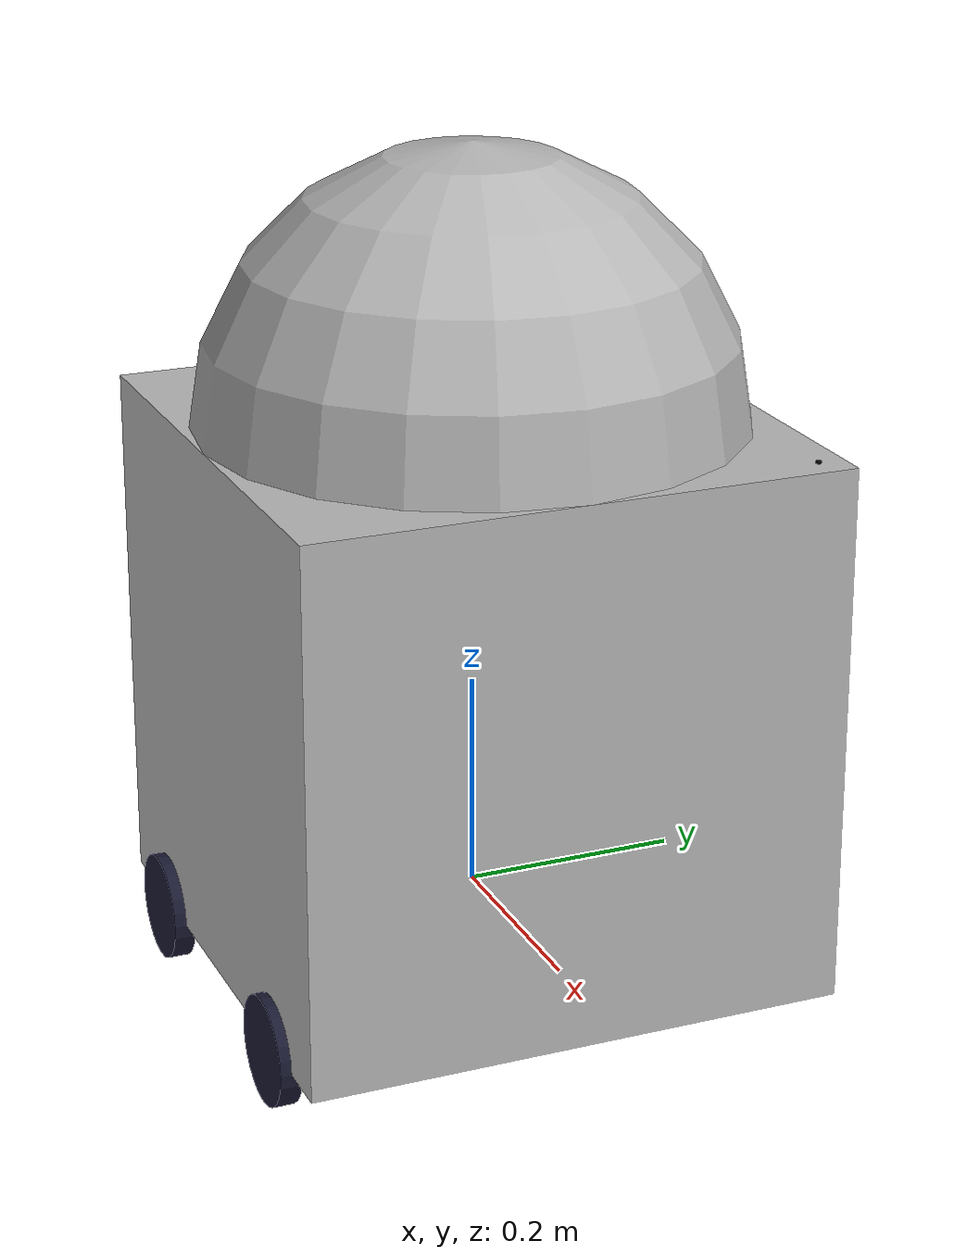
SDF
<?xml version='1.0'?>
<sdf version='1.6'>
  <model name='simplebot'>
    <model name='simplebot'>
      <link name='robot_link'>
        <pose frame=''>0 0 0.2 0 -0 0</pose>
        <self_collide>0</self_collide>
        <kinematic>0</kinematic>
        <gravity>1</gravity>
        <inertial>
          <mass>1</mass>
          <pose frame=''>0 0 0 0 -0 0</pose>
          <inertia>
            <ixx>1</ixx>
            <ixy>0</ixy>
            <ixz>0</ixz>
            <iyy>1</iyy>
            <iyz>0</iyz>
            <izz>1</izz>
          </inertia>
        </inertial>
        <visual name='power_led_visual'>
          <pose frame=''>0.225 0.225 0.25 0 -0 0</pose>
          <geometry>
            <sphere>
              <radius>0.003</radius>
            </sphere>
          </geometry>
          <material>
            <ambient>0 0 0 1</ambient>
            <diffuse>0 0 0 1</diffuse>
            <specular>0 0 0 1</specular>
            <emissive>0 1 0 1</emissive>
            <shader type='pixel'>
              <normal_map>__default__</normal_map>
            </shader>
            <script>
              <name>ModelPreview_1::robot_link::power_led_visual_MATERIAL_</name>
              <uri>__default__</uri>
            </script>
          </material>
          <transparency>0</transparency>
          <cast_shadows>1</cast_shadows>
        </visual>
        <visual name='body_visual'>
          <geometry>
            <box>
              <size>0.5 0.5 0.5</size>
            </box>
          </geometry>
          <material>
            <shader type='pixel'>
              <normal_map>__default__</normal_map>
            </shader>
            <emissive>0 0 0 1</emissive>
          </material>
          <pose frame=''>0 0 0 0 -0 0</pose>
          <cast_shadows>1</cast_shadows>
          <transparency>0</transparency>
        </visual>
        <visual name='head_visual'>
          <pose frame=''>0 0 0.25 0 0 -2.5</pose>
          <geometry>
            <sphere>
              <radius>0.25</radius>
            </sphere>
          </geometry>
          <material>
            <shader type='pixel'>
              <normal_map>__default__</normal_map>
            </shader>
            <emissive>0 0 0 1</emissive>
          </material>
          <cast_shadows>1</cast_shadows>
          <transparency>0</transparency>
        </visual>
        <collision name='body_collision'>
          <laser_retro>0</laser_retro>
          <max_contacts>10</max_contacts>
          <pose frame=''>0 0 0 0 -0 0</pose>
          <geometry>
            <box>
              <size>0.5 0.5 0.5</size>
            </box>
          </geometry>
          <surface>
            <friction>
              <ode>
                <mu>1</mu>
                <mu2>1</mu2>
                <fdir1>0 0 0</fdir1>
                <slip1>0</slip1>
                <slip2>0</slip2>
              </ode>
              <torsional>
                <coefficient>1</coefficient>
                <patch_radius>0</patch_radius>
                <surface_radius>0</surface_radius>
                <use_patch_radius>1</use_patch_radius>
                <ode>
                  <slip>0</slip>
                </ode>
              </torsional>
            </friction>
            <bounce>
              <restitution_coefficient>0</restitution_coefficient>
              <threshold>1e+06</threshold>
            </bounce>
            <contact>
              <collide_without_contact>0</collide_without_contact>
              <collide_without_contact_bitmask>1</collide_without_contact_bitmask>
              <collide_bitmask>1</collide_bitmask>
              <ode>
                <soft_cfm>0</soft_cfm>
                <soft_erp>0.2</soft_erp>
                <kp>1e+13</kp>
                <kd>1</kd>
                <max_vel>0.01</max_vel>
                <min_depth>0</min_depth>
              </ode>
              <bullet>
                <split_impulse>1</split_impulse>
                <split_impulse_penetration_threshold>-0.01</split_impulse_penetration_threshold>
                <soft_cfm>0</soft_cfm>
                <soft_erp>0.2</soft_erp>
                <kp>1e+13</kp>
                <kd>1</kd>
              </bullet>
            </contact>
          </surface>
        </collision>
      </link>
      <link name='link_1'>
        <pose frame=''>0.15 -0.25 -0.05 1.5707 -0 0</pose>
        <inertial>
          <mass>1</mass>
          <inertia>
            <ixx>0.145833</ixx>
            <ixy>0</ixy>
            <ixz>0</ixz>
            <iyy>0.145833</iyy>
            <iyz>0</iyz>
            <izz>0.125</izz>
          </inertia>
          <pose frame=''>0 0 0 0 -0 0</pose>
        </inertial>
        <gravity>1</gravity>
        <self_collide>0</self_collide>
        <kinematic>0</kinematic>
        <visual name='visual'>
          <pose frame=''>0 0 0 0 -0 0</pose>
          <geometry>
            <cylinder>
              <radius>0.05</radius>
              <length>0.02</length>
            </cylinder>
          </geometry>
          <material>
            <lighting>1</lighting>
            <script>
              <uri>file://media/materials/scripts/gazebo.material</uri>
              <name>Gazebo/Grey</name>
            </script>
            <shader type='pixel'>
              <normal_map>__default__</normal_map>
            </shader>
            <ambient>0.1 0.1 0.1 1</ambient>
            <diffuse>0.1 0.1 0.2 1</diffuse>
            <specular>0.01 0.01 0.01 1</specular>
            <emissive>0 0 0 1</emissive>
          </material>
          <transparency>0</transparency>
          <cast_shadows>1</cast_shadows>
        </visual>
        <collision name='collision'>
          <laser_retro>0</laser_retro>
          <max_contacts>10</max_contacts>
          <pose frame=''>0 0 0 0 -0 0</pose>
          <geometry>
            <cylinder>
              <radius>0.05</radius>
              <length>0.02</length>
            </cylinder>
          </geometry>
          <surface>
            <friction>
              <ode>
                <mu>1</mu>
                <mu2>1</mu2>
                <fdir1>0 0 0</fdir1>
                <slip1>0</slip1>
                <slip2>0</slip2>
              </ode>
              <torsional>
                <coefficient>1</coefficient>
                <patch_radius>0</patch_radius>
                <surface_radius>0</surface_radius>
                <use_patch_radius>1</use_patch_radius>
                <ode>
                  <slip>0</slip>
                </ode>
              </torsional>
            </friction>
            <bounce>
              <restitution_coefficient>0</restitution_coefficient>
              <threshold>1e+06</threshold>
            </bounce>
            <contact>
              <collide_without_contact>0</collide_without_contact>
              <collide_without_contact_bitmask>1</collide_without_contact_bitmask>
              <collide_bitmask>1</collide_bitmask>
              <ode>
                <soft_cfm>0</soft_cfm>
                <soft_erp>0.2</soft_erp>
                <kp>1e+13</kp>
                <kd>1</kd>
                <max_vel>0.01</max_vel>
                <min_depth>0</min_depth>
              </ode>
              <bullet>
                <split_impulse>1</split_impulse>
                <split_impulse_penetration_threshold>-0.01</split_impulse_penetration_threshold>
                <soft_cfm>0</soft_cfm>
                <soft_erp>0.2</soft_erp>
                <kp>1e+13</kp>
                <kd>1</kd>
              </bullet>
            </contact>
          </surface>
        </collision>
      </link>
      <link name='link_1_clone'>
        <pose frame=''>0.15 0.25 -0.05 1.5707 -0 0</pose>
        <inertial>
          <mass>1</mass>
          <inertia>
            <ixx>0.145833</ixx>
            <ixy>0</ixy>
            <ixz>0</ixz>
            <iyy>0.145833</iyy>
            <iyz>0</iyz>
            <izz>0.125</izz>
          </inertia>
          <pose frame=''>0 0 0 0 -0 0</pose>
        </inertial>
        <self_collide>0</self_collide>
        <kinematic>0</kinematic>
        <gravity>1</gravity>
        <visual name='visual'>
          <pose frame=''>0 0 0 0 -0 0</pose>
          <geometry>
            <cylinder>
              <radius>0.05</radius>
              <length>0.02</length>
            </cylinder>
          </geometry>
          <material>
            <lighting>1</lighting>
            <script>
              <uri>file://media/materials/scripts/gazebo.material</uri>
              <name>Gazebo/Grey</name>
            </script>
            <shader type='pixel'>
              <normal_map>__default__</normal_map>
            </shader>
            <ambient>0.1 0.1 0.1 1</ambient>
            <diffuse>0.1 0.1 0.2 1</diffuse>
            <specular>0.01 0.01 0.01 1</specular>
            <emissive>0 0 0 1</emissive>
          </material>
          <transparency>0</transparency>
          <cast_shadows>1</cast_shadows>
        </visual>
        <collision name='collision'>
          <laser_retro>0</laser_retro>
          <max_contacts>10</max_contacts>
          <pose frame=''>0 0 0 0 -0 0</pose>
          <geometry>
            <cylinder>
              <radius>0.05</radius>
              <length>0.02</length>
            </cylinder>
          </geometry>
          <surface>
            <friction>
              <ode>
                <mu>1</mu>
                <mu2>1</mu2>
                <fdir1>0 0 0</fdir1>
                <slip1>0</slip1>
                <slip2>0</slip2>
              </ode>
              <torsional>
                <coefficient>1</coefficient>
                <patch_radius>0</patch_radius>
                <surface_radius>0</surface_radius>
                <use_patch_radius>1</use_patch_radius>
                <ode>
                  <slip>0</slip>
                </ode>
              </torsional>
            </friction>
            <bounce>
              <restitution_coefficient>0</restitution_coefficient>
              <threshold>1e+06</threshold>
            </bounce>
            <contact>
              <collide_without_contact>0</collide_without_contact>
              <collide_without_contact_bitmask>1</collide_without_contact_bitmask>
              <collide_bitmask>1</collide_bitmask>
              <ode>
                <soft_cfm>0</soft_cfm>
                <soft_erp>0.2</soft_erp>
                <kp>1e+13</kp>
                <kd>1</kd>
                <max_vel>0.01</max_vel>
                <min_depth>0</min_depth>
              </ode>
              <bullet>
                <split_impulse>1</split_impulse>
                <split_impulse_penetration_threshold>-0.01</split_impulse_penetration_threshold>
                <soft_cfm>0</soft_cfm>
                <soft_erp>0.2</soft_erp>
                <kp>1e+13</kp>
                <kd>1</kd>
              </bullet>
            </contact>
          </surface>
        </collision>
      </link>
      <link name='link_1_clone_0'>
        <pose frame=''>-0.15 -0.251249 -0.05 1.5707 -0 0</pose>
        <inertial>
          <mass>1</mass>
          <inertia>
            <ixx>0.145833</ixx>
            <ixy>0</ixy>
            <ixz>0</ixz>
            <iyy>0.145833</iyy>
            <iyz>0</iyz>
            <izz>0.125</izz>
          </inertia>
          <pose frame=''>0 0 0 0 -0 0</pose>
        </inertial>
        <self_collide>0</self_collide>
        <kinematic>0</kinematic>
        <gravity>1</gravity>
        <visual name='visual'>
          <pose frame=''>0 0 0 0 -0 0</pose>
          <geometry>
            <cylinder>
              <radius>0.05</radius>
              <length>0.02</length>
            </cylinder>
          </geometry>
          <material>
            <lighting>1</lighting>
            <script>
              <uri>file://media/materials/scripts/gazebo.material</uri>
              <name>Gazebo/Grey</name>
            </script>
            <shader type='pixel'>
              <normal_map>__default__</normal_map>
            </shader>
            <ambient>0.1 0.1 0.1 1</ambient>
            <diffuse>0.1 0.1 0.2 1</diffuse>
            <specular>0.01 0.01 0.01 1</specular>
            <emissive>0 0 0 1</emissive>
          </material>
          <transparency>0</transparency>
          <cast_shadows>1</cast_shadows>
        </visual>
        <collision name='collision'>
          <laser_retro>0</laser_retro>
          <max_contacts>10</max_contacts>
          <pose frame=''>0 0 0 0 -0 0</pose>
          <geometry>
            <cylinder>
              <radius>0.05</radius>
              <length>0.02</length>
            </cylinder>
          </geometry>
          <surface>
            <friction>
              <ode>
                <mu>1</mu>
                <mu2>1</mu2>
                <fdir1>0 0 0</fdir1>
                <slip1>0</slip1>
                <slip2>0</slip2>
              </ode>
              <torsional>
                <coefficient>1</coefficient>
                <patch_radius>0</patch_radius>
                <surface_radius>0</surface_radius>
                <use_patch_radius>1</use_patch_radius>
                <ode>
                  <slip>0</slip>
                </ode>
              </torsional>
            </friction>
            <bounce>
              <restitution_coefficient>0</restitution_coefficient>
              <threshold>1e+06</threshold>
            </bounce>
            <contact>
              <collide_without_contact>0</collide_without_contact>
              <collide_without_contact_bitmask>1</collide_without_contact_bitmask>
              <collide_bitmask>1</collide_bitmask>
              <ode>
                <soft_cfm>0</soft_cfm>
                <soft_erp>0.2</soft_erp>
                <kp>1e+13</kp>
                <kd>1</kd>
                <max_vel>0.01</max_vel>
                <min_depth>0</min_depth>
              </ode>
              <bullet>
                <split_impulse>1</split_impulse>
                <split_impulse_penetration_threshold>-0.01</split_impulse_penetration_threshold>
                <soft_cfm>0</soft_cfm>
                <soft_erp>0.2</soft_erp>
                <kp>1e+13</kp>
                <kd>1</kd>
              </bullet>
            </contact>
          </surface>
        </collision>
      </link>
      <link name='link_1_clone_clone'>
        <pose frame=''>-0.15 0.25 -0.05 1.5707 -0 0</pose>
        <inertial>
          <mass>1</mass>
          <inertia>
            <ixx>0.145833</ixx>
            <ixy>0</ixy>
            <ixz>0</ixz>
            <iyy>0.145833</iyy>
            <iyz>0</iyz>
            <izz>0.125</izz>
          </inertia>
          <pose frame=''>0 0 0 0 -0 0</pose>
        </inertial>
        <self_collide>0</self_collide>
        <kinematic>0</kinematic>
        <gravity>1</gravity>
        <visual name='visual'>
          <pose frame=''>0 0 0 0 -0 0</pose>
          <geometry>
            <cylinder>
              <radius>0.05</radius>
              <length>0.02</length>
            </cylinder>
          </geometry>
          <material>
            <lighting>1</lighting>
            <script>
              <uri>file://media/materials/scripts/gazebo.material</uri>
              <name>Gazebo/Grey</name>
            </script>
            <shader type='pixel'>
              <normal_map>__default__</normal_map>
            </shader>
            <ambient>0.1 0.1 0.1 1</ambient>
            <diffuse>0.1 0.1 0.2 1</diffuse>
            <specular>0.01 0.01 0.01 1</specular>
            <emissive>0 0 0 1</emissive>
          </material>
          <transparency>0</transparency>
          <cast_shadows>1</cast_shadows>
        </visual>
        <collision name='collision'>
          <laser_retro>0</laser_retro>
          <max_contacts>10</max_contacts>
          <pose frame=''>0 0 0 0 -0 0</pose>
          <geometry>
            <cylinder>
              <radius>0.05</radius>
              <length>0.02</length>
            </cylinder>
          </geometry>
          <surface>
            <friction>
              <ode>
                <mu>1</mu>
                <mu2>1</mu2>
                <fdir1>0 0 0</fdir1>
                <slip1>0</slip1>
                <slip2>0</slip2>
              </ode>
              <torsional>
                <coefficient>1</coefficient>
                <patch_radius>0</patch_radius>
                <surface_radius>0</surface_radius>
                <use_patch_radius>1</use_patch_radius>
                <ode>
                  <slip>0</slip>
                </ode>
              </torsional>
            </friction>
            <bounce>
              <restitution_coefficient>0</restitution_coefficient>
              <threshold>1e+06</threshold>
            </bounce>
            <contact>
              <collide_without_contact>0</collide_without_contact>
              <collide_without_contact_bitmask>1</collide_without_contact_bitmask>
              <collide_bitmask>1</collide_bitmask>
              <ode>
                <soft_cfm>0</soft_cfm>
                <soft_erp>0.2</soft_erp>
                <kp>1e+13</kp>
                <kd>1</kd>
                <max_vel>0.01</max_vel>
                <min_depth>0</min_depth>
              </ode>
              <bullet>
                <split_impulse>1</split_impulse>
                <split_impulse_penetration_threshold>-0.01</split_impulse_penetration_threshold>
                <soft_cfm>0</soft_cfm>
                <soft_erp>0.2</soft_erp>
                <kp>1e+13</kp>
                <kd>1</kd>
              </bullet>
            </contact>
          </surface>
        </collision>
      </link>
      <joint name='robot_link_JOINT_0' type='revolute'>
        <parent>robot_link</parent>
        <child>link_1</child>
        <pose frame=''>0 0 0 0 -0 0</pose>
        <axis>
          <xyz>0 0 1</xyz>
          <use_parent_model_frame>0</use_parent_model_frame>
          <limit>
            <lower>-1.79769e+308</lower>
            <upper>1.79769e+308</upper>
            <effort>-1</effort>
            <velocity>-1</velocity>
          </limit>
          <dynamics>
            <spring_reference>0</spring_reference>
            <spring_stiffness>0</spring_stiffness>
            <damping>0</damping>
          </dynamics>
        </axis>
        <physics>
          <ode>
            <limit>
              <cfm>0</cfm>
              <erp>0.2</erp>
            </limit>
            <suspension>
              <cfm>0</cfm>
              <erp>0.2</erp>
            </suspension>
          </ode>
        </physics>
      </joint>
      <joint name='robot_link_JOINT_2' type='revolute'>
        <parent>robot_link</parent>
        <child>link_1_clone</child>
        <pose frame=''>0 0 0 0 -0 0</pose>
        <axis>
          <xyz>0 0 1</xyz>
          <use_parent_model_frame>0</use_parent_model_frame>
          <limit>
            <lower>-1.79769e+308</lower>
            <upper>1.79769e+308</upper>
            <effort>-1</effort>
            <velocity>-1</velocity>
          </limit>
          <dynamics>
            <spring_reference>0</spring_reference>
            <spring_stiffness>0</spring_stiffness>
            <damping>0</damping>
          </dynamics>
        </axis>
        <physics>
          <ode>
            <limit>
              <cfm>0</cfm>
              <erp>0.2</erp>
            </limit>
            <suspension>
              <cfm>0</cfm>
              <erp>0.2</erp>
            </suspension>
          </ode>
        </physics>
      </joint>
      <joint name='robot_link_JOINT_3' type='revolute'>
        <parent>robot_link</parent>
        <child>link_1_clone_clone</child>
        <pose frame=''>0 0 0 0 -0 0</pose>
        <axis>
          <xyz>0 0 1</xyz>
          <use_parent_model_frame>0</use_parent_model_frame>
          <limit>
            <lower>-1.79769e+308</lower>
            <upper>1.79769e+308</upper>
            <effort>-1</effort>
            <velocity>-1</velocity>
          </limit>
          <dynamics>
            <spring_reference>0</spring_reference>
            <spring_stiffness>0</spring_stiffness>
            <damping>0</damping>
          </dynamics>
        </axis>
        <physics>
          <ode>
            <limit>
              <cfm>0</cfm>
              <erp>0.2</erp>
            </limit>
            <suspension>
              <cfm>0</cfm>
              <erp>0.2</erp>
            </suspension>
          </ode>
        </physics>
      </joint>
      <joint name='robot_link_JOINT_4' type='revolute'>
        <parent>robot_link</parent>
        <child>link_1_clone_0</child>
        <pose frame=''>0 0 0 0 -0 0</pose>
        <axis>
          <xyz>0 0 1</xyz>
          <use_parent_model_frame>0</use_parent_model_frame>
          <limit>
            <lower>-1.79769e+308</lower>
            <upper>1.79769e+308</upper>
            <effort>-1</effort>
            <velocity>-1</velocity>
          </limit>
          <dynamics>
            <spring_reference>0</spring_reference>
            <spring_stiffness>0</spring_stiffness>
            <damping>0</damping>
          </dynamics>
        </axis>
        <physics>
          <ode>
            <limit>
              <cfm>0</cfm>
              <erp>0.2</erp>
            </limit>
            <suspension>
              <cfm>0</cfm>
              <erp>0.2</erp>
            </suspension>
          </ode>
        </physics>
      </joint>
      <static>1</static>
      <allow_auto_disable>1</allow_auto_disable>
      <pose frame=''>3e-06 -0 0 0 -0 0</pose>
    </model>
    <static>0</static>
    <allow_auto_disable>1</allow_auto_disable>
  </model>
</sdf>
